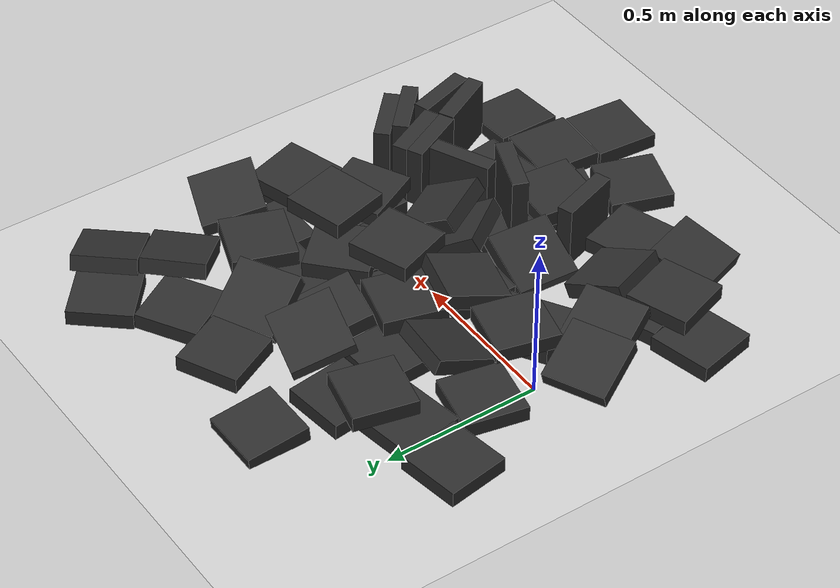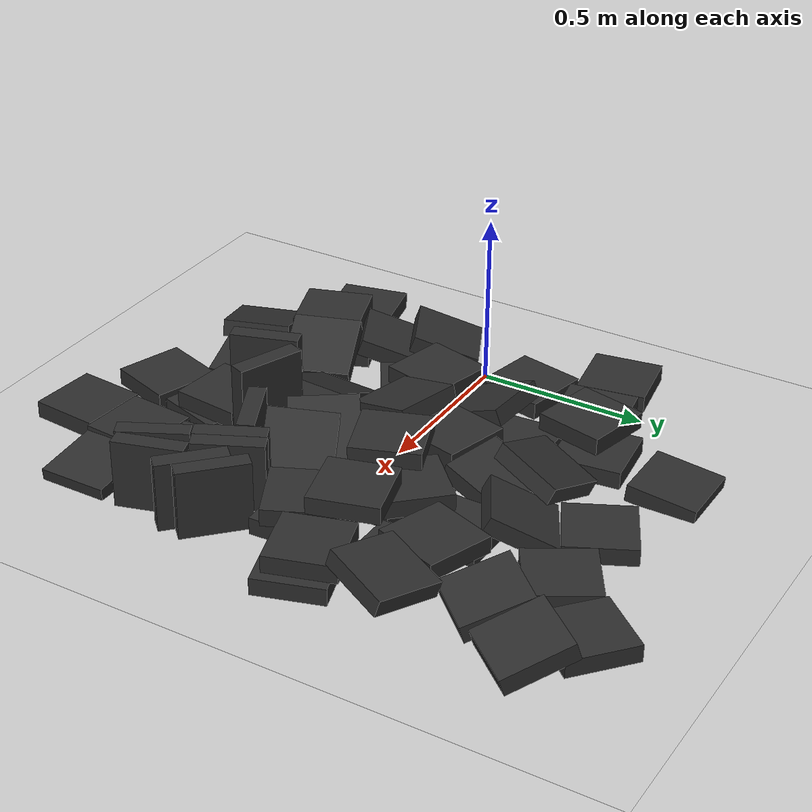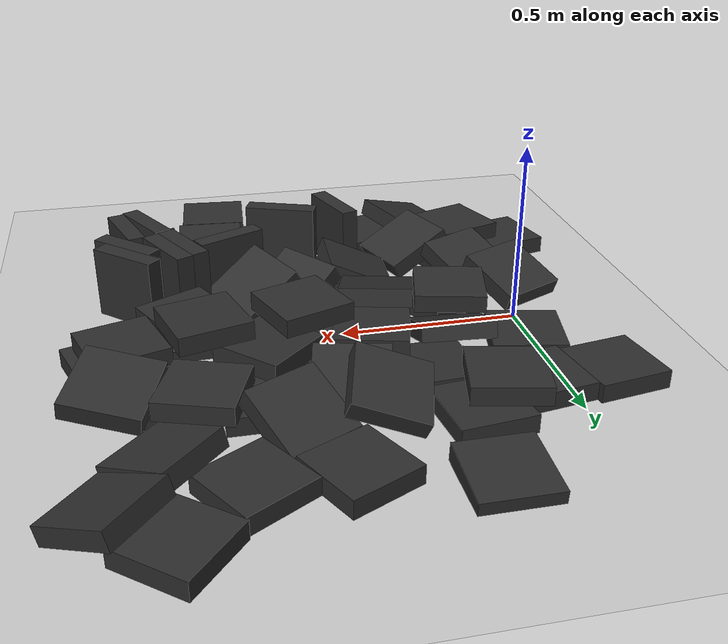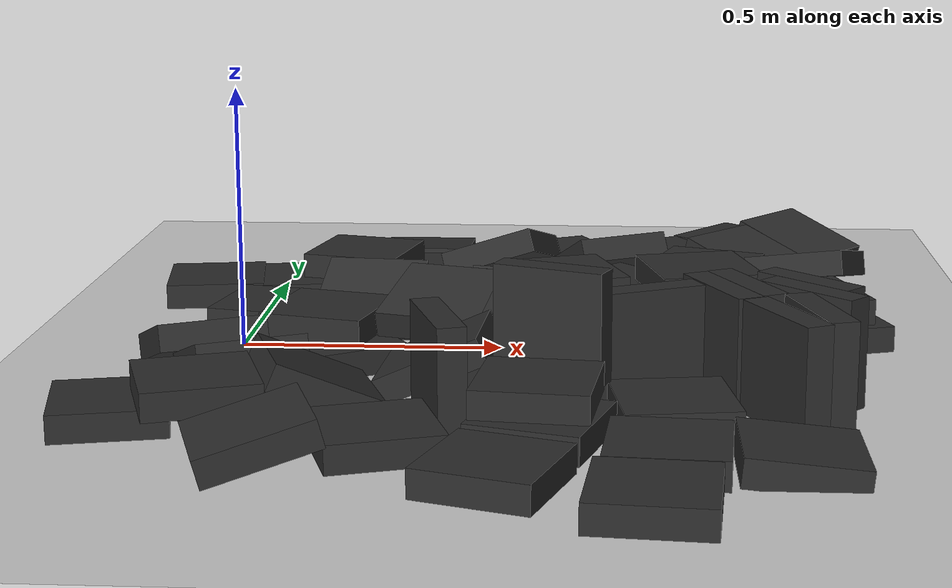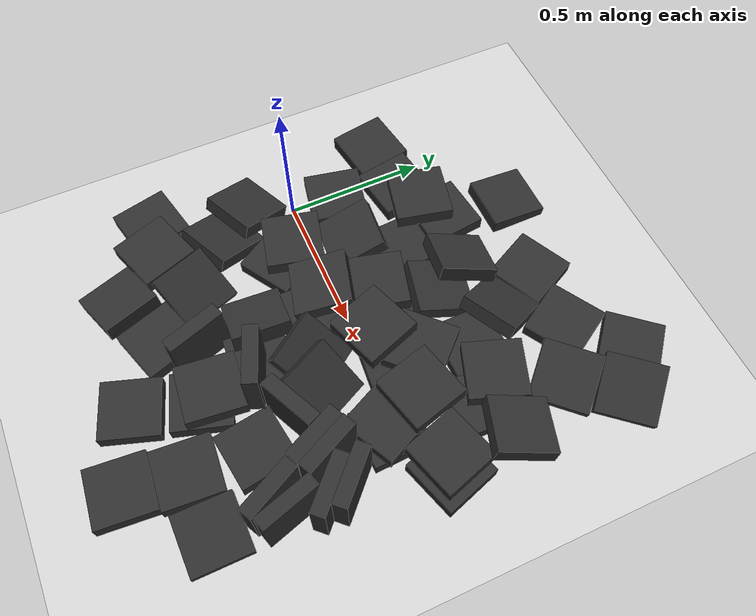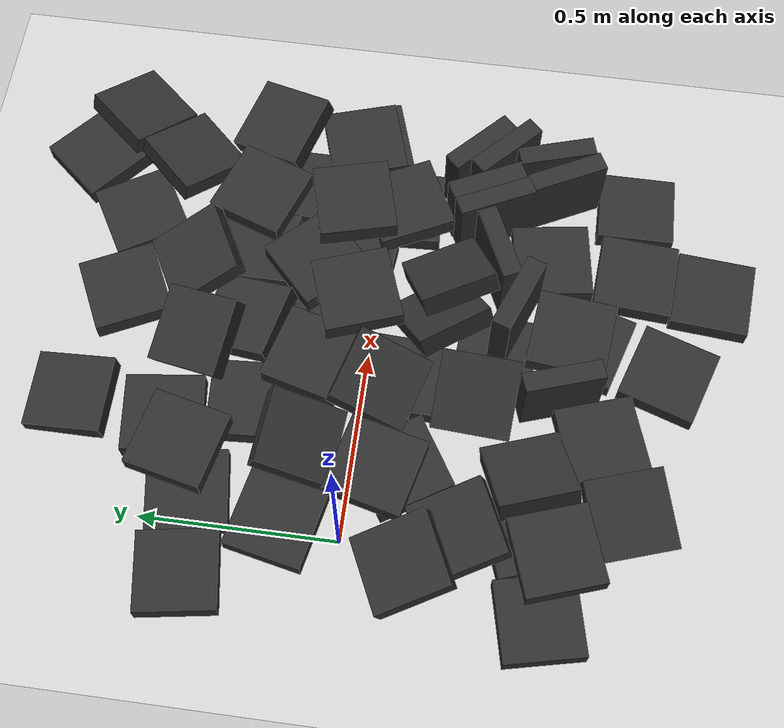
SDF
<sdf version="1.6">
 <world name="default">
  <model name="ground_plane">
   <static>1</static>
   <link name="link">
    <collision name="collision">
     <geometry><plane><normal>0 0 1</normal><size>100 100</size></plane></geometry>
     <surface><friction><ode><mu>100</mu><mu2>50</mu2></ode></friction></surface>
    </collision>
    <visual name="visual">
     <cast_shadows>0</cast_shadows>
     <geometry><plane><normal>0 0 1</normal><size>100 100</size></plane></geometry>
     <material>
      <script><uri>file://media/materials/scripts/gazebo.material</uri><name>Gazebo/Grey</name></script>
     </material>
    </visual>
   </link>
  </model>
  <model name="gareki3">
   <static>1</static>
   <link name="BOX">
    <inertial>
     <mass>10</mass>
     <inertia><ixx>0.001</ixx><ixy>0</ixy><ixz>0</ixz><iyy>0.001</iyy><iyz>0</iyz><izz>0.001</izz></inertia>
    </inertial>
    <collision name="BOX_collision"><geometry><box><size>0.2 0.2 0.05</size></box></geometry></collision>
    <visual name="BOX_visual">
     <geometry><box><size>0.2 0.2 0.05</size></box></geometry>
     <material>
      <ambient>0.175 0.175 0.175 1.0</ambient>
      <diffuse>0.175 0.175 0.175 1.0</diffuse>
      <specular>0.175 0.175 0.175 1.0 1.5</specular>
     </material>
    </visual>
   </link>
   <pose>0.727338 0.072697 0.024895 -0.006319 0.000637 -0.089018</pose>
  </model>
  <model name="gareki0">
   <static>1</static>
   <link name="BOX">
    <inertial>
     <mass>10</mass>
     <inertia><ixx>0.001</ixx><ixy>0</ixy><ixz>0</ixz><iyy>0.001</iyy><iyz>0</iyz><izz>0.001</izz></inertia>
    </inertial>
    <collision name="BOX_collision"><geometry><box><size>0.2 0.2 0.05</size></box></geometry></collision>
    <visual name="BOX_visual">
     <geometry><box><size>0.2 0.2 0.05</size></box></geometry>
     <material>
      <ambient>0.175 0.175 0.175 1.0</ambient>
      <diffuse>0.175 0.175 0.175 1.0</diffuse>
      <specular>0.175 0.175 0.175 1.0 1.5</specular>
     </material>
    </visual>
   </link>
   <pose>0.526934 0.133943 0.024731 0.000444 0.008115 -0.155967</pose>
  </model>
  <model name="gareki1">
   <static>1</static>
   <link name="BOX">
    <inertial>
     <mass>10</mass>
     <inertia><ixx>0.001</ixx><ixy>0</ixy><ixz>0</ixz><iyy>0.001</iyy><iyz>0</iyz><izz>0.001</izz></inertia>
    </inertial>
    <collision name="BOX_collision"><geometry><box><size>0.2 0.2 0.05</size></box></geometry></collision>
    <visual name="BOX_visual">
     <geometry><box><size>0.2 0.2 0.05</size></box></geometry>
     <material>
      <ambient>0.175 0.175 0.175 1.0</ambient>
      <diffuse>0.175 0.175 0.175 1.0</diffuse>
      <specular>0.175 0.175 0.175 1.0 1.5</specular>
     </material>
    </visual>
   </link>
   <pose>0.07655 -0.448971 0.024951 0.001245 -0.000716 0.34208</pose>
  </model>
  <model name="gareki4">
   <static>1</static>
   <link name="BOX">
    <inertial>
     <mass>10</mass>
     <inertia><ixx>0.001</ixx><ixy>0</ixy><ixz>0</ixz><iyy>0.001</iyy><iyz>0</iyz><izz>0.001</izz></inertia>
    </inertial>
    <collision name="BOX_collision"><geometry><box><size>0.2 0.2 0.05</size></box></geometry></collision>
    <visual name="BOX_visual">
     <geometry><box><size>0.2 0.2 0.05</size></box></geometry>
     <material>
      <ambient>0.175 0.175 0.175 1.0</ambient>
      <diffuse>0.175 0.175 0.175 1.0</diffuse>
      <specular>0.175 0.175 0.175 1.0 1.5</specular>
     </material>
    </visual>
   </link>
   <pose>0.324883 0.277416 0.024996 -0.003515 0.002962 -3.07923</pose>
  </model>
  <model name="gareki12">
   <static>1</static>
   <link name="BOX">
    <inertial>
     <mass>10</mass>
     <inertia><ixx>0.001</ixx><ixy>0</ixy><ixz>0</ixz><iyy>0.001</iyy><iyz>0</iyz><izz>0.001</izz></inertia>
    </inertial>
    <collision name="BOX_collision"><geometry><box><size>0.2 0.2 0.05</size></box></geometry></collision>
    <visual name="BOX_visual">
     <geometry><box><size>0.2 0.2 0.05</size></box></geometry>
     <material>
      <ambient>0.175 0.175 0.175 1.0</ambient>
      <diffuse>0.175 0.175 0.175 1.0</diffuse>
      <specular>0.175 0.175 0.175 1.0 1.5</specular>
     </material>
    </visual>
   </link>
   <pose>0.028326 0.158663 0.025 -3.9e-05 -1.6e-05 -0.205768</pose>
  </model>
  <model name="gareki2">
   <static>1</static>
   <link name="BOX">
    <inertial>
     <mass>10</mass>
     <inertia><ixx>0.001</ixx><ixy>0</ixy><ixz>0</ixz><iyy>0.001</iyy><iyz>0</iyz><izz>0.001</izz></inertia>
    </inertial>
    <collision name="BOX_collision"><geometry><box><size>0.2 0.2 0.05</size></box></geometry></collision>
    <visual name="BOX_visual">
     <geometry><box><size>0.2 0.2 0.05</size></box></geometry>
     <material>
      <ambient>0.175 0.175 0.175 1.0</ambient>
      <diffuse>0.175 0.175 0.175 1.0</diffuse>
      <specular>0.175 0.175 0.175 1.0 1.5</specular>
     </material>
    </visual>
   </link>
   <pose>0.543755 0.324039 0.051578 -0.27355 -0.005032 -0.220128</pose>
  </model>
  <model name="gareki15">
   <static>1</static>
   <link name="BOX">
    <inertial>
     <mass>10</mass>
     <inertia><ixx>0.001</ixx><ixy>0</ixy><ixz>0</ixz><iyy>0.001</iyy><iyz>0</iyz><izz>0.001</izz></inertia>
    </inertial>
    <collision name="BOX_collision"><geometry><box><size>0.2 0.2 0.05</size></box></geometry></collision>
    <visual name="BOX_visual">
     <geometry><box><size>0.2 0.2 0.05</size></box></geometry>
     <material>
      <ambient>0.175 0.175 0.175 1.0</ambient>
      <diffuse>0.175 0.175 0.175 1.0</diffuse>
      <specular>0.175 0.175 0.175 1.0 1.5</specular>
     </material>
    </visual>
   </link>
   <pose>0.288718 0.729996 0.016046 -0.092922 0 0</pose>
  </model>
  <model name="gareki6">
   <static>1</static>
   <link name="BOX">
    <inertial>
     <mass>10</mass>
     <inertia><ixx>0.001</ixx><ixy>0</ixy><ixz>0</ixz><iyy>0.001</iyy><iyz>0</iyz><izz>0.001</izz></inertia>
    </inertial>
    <collision name="BOX_collision"><geometry><box><size>0.2 0.2 0.05</size></box></geometry></collision>
    <visual name="BOX_visual">
     <geometry><box><size>0.2 0.2 0.05</size></box></geometry>
     <material>
      <ambient>0.175 0.175 0.175 1.0</ambient>
      <diffuse>0.175 0.175 0.175 1.0</diffuse>
      <specular>0.175 0.175 0.175 1.0 1.5</specular>
     </material>
    </visual>
   </link>
   <pose>0.93069 -0.037854 0.024959 0.000599 -0.000422 0.044697</pose>
  </model>
  <model name="gareki17">
   <static>1</static>
   <link name="BOX">
    <inertial>
     <mass>10</mass>
     <inertia><ixx>0.001</ixx><ixy>0</ixy><ixz>0</ixz><iyy>0.001</iyy><iyz>0</iyz><izz>0.001</izz></inertia>
    </inertial>
    <collision name="BOX_collision"><geometry><box><size>0.2 0.2 0.05</size></box></geometry></collision>
    <visual name="BOX_visual">
     <geometry><box><size>0.2 0.2 0.05</size></box></geometry>
     <material>
      <ambient>0.175 0.175 0.175 1.0</ambient>
      <diffuse>0.175 0.175 0.175 1.0</diffuse>
      <specular>0.175 0.175 0.175 1.0 1.5</specular>
     </material>
    </visual>
   </link>
   <pose>1.06244 -0.222001 0.100002 1.57085 -1e-06 -0.761516</pose>
  </model>
  <model name="gareki18">
   <static>1</static>
   <link name="BOX">
    <inertial>
     <mass>10</mass>
     <inertia><ixx>0.001</ixx><ixy>0</ixy><ixz>0</ixz><iyy>0.001</iyy><iyz>0</iyz><izz>0.001</izz></inertia>
    </inertial>
    <collision name="BOX_collision"><geometry><box><size>0.2 0.2 0.05</size></box></geometry></collision>
    <visual name="BOX_visual">
     <geometry><box><size>0.2 0.2 0.05</size></box></geometry>
     <material>
      <ambient>0.175 0.175 0.175 1.0</ambient>
      <diffuse>0.175 0.175 0.175 1.0</diffuse>
      <specular>0.175 0.175 0.175 1.0 1.5</specular>
     </material>
    </visual>
   </link>
   <pose>1.01081 -0.655456 0.016063 -1.1e-05 0.092734 0.001786</pose>
  </model>
  <model name="gareki14">
   <static>1</static>
   <link name="BOX">
    <inertial>
     <mass>10</mass>
     <inertia><ixx>0.001</ixx><ixy>0</ixy><ixz>0</ixz><iyy>0.001</iyy><iyz>0</iyz><izz>0.001</izz></inertia>
    </inertial>
    <collision name="BOX_collision"><geometry><box><size>0.2 0.2 0.05</size></box></geometry></collision>
    <visual name="BOX_visual">
     <geometry><box><size>0.2 0.2 0.05</size></box></geometry>
     <material>
      <ambient>0.175 0.175 0.175 1.0</ambient>
      <diffuse>0.175 0.175 0.175 1.0</diffuse>
      <specular>0.175 0.175 0.175 1.0 1.5</specular>
     </material>
    </visual>
   </link>
   <pose>0.533327 -0.32418 0.024981 1.6e-05 2.9e-05 -1.63397</pose>
  </model>
  <model name="gareki28">
   <static>1</static>
   <link name="BOX">
    <inertial>
     <mass>10</mass>
     <inertia><ixx>0.001</ixx><ixy>0</ixy><ixz>0</ixz><iyy>0.001</iyy><iyz>0</iyz><izz>0.001</izz></inertia>
    </inertial>
    <collision name="BOX_collision"><geometry><box><size>0.2 0.2 0.05</size></box></geometry></collision>
    <visual name="BOX_visual">
     <geometry><box><size>0.2 0.2 0.05</size></box></geometry>
     <material>
      <ambient>0.175 0.175 0.175 1.0</ambient>
      <diffuse>0.175 0.175 0.175 1.0</diffuse>
      <specular>0.175 0.175 0.175 1.0 1.5</specular>
     </material>
    </visual>
   </link>
   <pose>1.06061 -0.289358 0.099992 1.57087 2.1e-05 -0.761632</pose>
  </model>
  <model name="gareki27">
   <static>1</static>
   <link name="BOX">
    <inertial>
     <mass>10</mass>
     <inertia><ixx>0.001</ixx><ixy>0</ixy><ixz>0</ixz><iyy>0.001</iyy><iyz>0</iyz><izz>0.001</izz></inertia>
    </inertial>
    <collision name="BOX_collision"><geometry><box><size>0.2 0.2 0.05</size></box></geometry></collision>
    <visual name="BOX_visual">
     <geometry><box><size>0.2 0.2 0.05</size></box></geometry>
     <material>
      <ambient>0.175 0.175 0.175 1.0</ambient>
      <diffuse>0.175 0.175 0.175 1.0</diffuse>
      <specular>0.175 0.175 0.175 1.0 1.5</specular>
     </material>
    </visual>
   </link>
   <pose>0.260534 0.484094 0.024989 -0.000544 -0.000708 0.120012</pose>
  </model>
  <model name="gareki24">
   <static>1</static>
   <link name="BOX">
    <inertial>
     <mass>10</mass>
     <inertia><ixx>0.001</ixx><ixy>0</ixy><ixz>0</ixz><iyy>0.001</iyy><iyz>0</iyz><izz>0.001</izz></inertia>
    </inertial>
    <collision name="BOX_collision"><geometry><box><size>0.2 0.2 0.05</size></box></geometry></collision>
    <visual name="BOX_visual">
     <geometry><box><size>0.2 0.2 0.05</size></box></geometry>
     <material>
      <ambient>0.175 0.175 0.175 1.0</ambient>
      <diffuse>0.175 0.175 0.175 1.0</diffuse>
      <specular>0.175 0.175 0.175 1.0 1.5</specular>
     </material>
    </visual>
   </link>
   <pose>0.763953 0.335618 0.024998 -0.000655 3.7e-05 -0.0041</pose>
  </model>
  <model name="gareki26">
   <static>1</static>
   <link name="BOX">
    <inertial>
     <mass>10</mass>
     <inertia><ixx>0.001</ixx><ixy>0</ixy><ixz>0</ixz><iyy>0.001</iyy><iyz>0</iyz><izz>0.001</izz></inertia>
    </inertial>
    <collision name="BOX_collision"><geometry><box><size>0.2 0.2 0.05</size></box></geometry></collision>
    <visual name="BOX_visual">
     <geometry><box><size>0.2 0.2 0.05</size></box></geometry>
     <material>
      <ambient>0.175 0.175 0.175 1.0</ambient>
      <diffuse>0.175 0.175 0.175 1.0</diffuse>
      <specular>0.175 0.175 0.175 1.0 1.5</specular>
     </material>
    </visual>
   </link>
   <pose>0.949059 -0.250492 0.099986 1.57089 -0.000319 -1.11763</pose>
  </model>
  <model name="gareki22">
   <static>1</static>
   <link name="BOX">
    <inertial>
     <mass>10</mass>
     <inertia><ixx>0.001</ixx><ixy>0</ixy><ixz>0</ixz><iyy>0.001</iyy><iyz>0</iyz><izz>0.001</izz></inertia>
    </inertial>
    <collision name="BOX_collision"><geometry><box><size>0.2 0.2 0.05</size></box></geometry></collision>
    <visual name="BOX_visual">
     <geometry><box><size>0.2 0.2 0.05</size></box></geometry>
     <material>
      <ambient>0.175 0.175 0.175 1.0</ambient>
      <diffuse>0.175 0.175 0.175 1.0</diffuse>
      <specular>0.175 0.175 0.175 1.0 1.5</specular>
     </material>
    </visual>
   </link>
   <pose>1.01077 0.551392 0.051467 -0.277361 0.000777 -2.331</pose>
  </model>
  <model name="gareki36">
   <static>1</static>
   <link name="BOX">
    <inertial>
     <mass>10</mass>
     <inertia><ixx>0.001</ixx><ixy>0</ixy><ixz>0</ixz><iyy>0.001</iyy><iyz>0</iyz><izz>0.001</izz></inertia>
    </inertial>
    <collision name="BOX_collision"><geometry><box><size>0.2 0.2 0.05</size></box></geometry></collision>
    <visual name="BOX_visual">
     <geometry><box><size>0.2 0.2 0.05</size></box></geometry>
     <material>
      <ambient>0.175 0.175 0.175 1.0</ambient>
      <diffuse>0.175 0.175 0.175 1.0</diffuse>
      <specular>0.175 0.175 0.175 1.0 1.5</specular>
     </material>
    </visual>
   </link>
   <pose>0.776019 -0.866008 0.024998 2e-05 -1.8e-05 -0.083468</pose>
  </model>
  <model name="gareki35">
   <static>1</static>
   <link name="BOX">
    <inertial>
     <mass>10</mass>
     <inertia><ixx>0.001</ixx><ixy>0</ixy><ixz>0</ixz><iyy>0.001</iyy><iyz>0</iyz><izz>0.001</izz></inertia>
    </inertial>
    <collision name="BOX_collision"><geometry><box><size>0.2 0.2 0.05</size></box></geometry></collision>
    <visual name="BOX_visual">
     <geometry><box><size>0.2 0.2 0.05</size></box></geometry>
     <material>
      <ambient>0.175 0.175 0.175 1.0</ambient>
      <diffuse>0.175 0.175 0.175 1.0</diffuse>
      <specular>0.175 0.175 0.175 1.0 1.5</specular>
     </material>
    </visual>
   </link>
   <pose>0.826051 0.659003 0.024996 0.00046 0.000318 0.536156</pose>
  </model>
  <model name="gareki25">
   <static>1</static>
   <link name="BOX">
    <inertial>
     <mass>10</mass>
     <inertia><ixx>0.001</ixx><ixy>0</ixy><ixz>0</ixz><iyy>0.001</iyy><iyz>0</iyz><izz>0.001</izz></inertia>
    </inertial>
    <collision name="BOX_collision"><geometry><box><size>0.2 0.2 0.05</size></box></geometry></collision>
    <visual name="BOX_visual">
     <geometry><box><size>0.2 0.2 0.05</size></box></geometry>
     <material>
      <ambient>0.175 0.175 0.175 1.0</ambient>
      <diffuse>0.175 0.175 0.175 1.0</diffuse>
      <specular>0.175 0.175 0.175 1.0 1.5</specular>
     </material>
    </visual>
   </link>
   <pose>0.99652 0.812877 0.024986 -7.8e-05 0.000308 2.43506</pose>
  </model>
  <model name="gareki38">
   <static>1</static>
   <link name="BOX">
    <inertial>
     <mass>10</mass>
     <inertia><ixx>0.001</ixx><ixy>0</ixy><ixz>0</ixz><iyy>0.001</iyy><iyz>0</iyz><izz>0.001</izz></inertia>
    </inertial>
    <collision name="BOX_collision"><geometry><box><size>0.2 0.2 0.05</size></box></geometry></collision>
    <visual name="BOX_visual">
     <geometry><box><size>0.2 0.2 0.05</size></box></geometry>
     <material>
      <ambient>0.175 0.175 0.175 1.0</ambient>
      <diffuse>0.175 0.175 0.175 1.0</diffuse>
      <specular>0.175 0.175 0.175 1.0 1.5</specular>
     </material>
    </visual>
   </link>
   <pose>0.332723 -0.608174 0.024992 0.001324 0.000771 0.320978</pose>
  </model>
  <model name="gareki42">
   <static>1</static>
   <link name="BOX">
    <inertial>
     <mass>10</mass>
     <inertia><ixx>0.001</ixx><ixy>0</ixy><ixz>0</ixz><iyy>0.001</iyy><iyz>0</iyz><izz>0.001</izz></inertia>
    </inertial>
    <collision name="BOX_collision"><geometry><box><size>0.2 0.2 0.05</size></box></geometry></collision>
    <visual name="BOX_visual">
     <geometry><box><size>0.2 0.2 0.05</size></box></geometry>
     <material>
      <ambient>0.175 0.175 0.175 1.0</ambient>
      <diffuse>0.175 0.175 0.175 1.0</diffuse>
      <specular>0.175 0.175 0.175 1.0 1.5</specular>
     </material>
    </visual>
   </link>
   <pose>0.917537 -0.043055 0.074792 0.010577 0.011705 2.02669</pose>
  </model>
  <model name="gareki30">
   <static>1</static>
   <link name="BOX">
    <inertial>
     <mass>10</mass>
     <inertia><ixx>0.001</ixx><ixy>0</ixy><ixz>0</ixz><iyy>0.001</iyy><iyz>0</iyz><izz>0.001</izz></inertia>
    </inertial>
    <collision name="BOX_collision"><geometry><box><size>0.2 0.2 0.05</size></box></geometry></collision>
    <visual name="BOX_visual">
     <geometry><box><size>0.2 0.2 0.05</size></box></geometry>
     <material>
      <ambient>0.175 0.175 0.175 1.0</ambient>
      <diffuse>0.175 0.175 0.175 1.0</diffuse>
      <specular>0.175 0.175 0.175 1.0 1.5</specular>
     </material>
    </visual>
   </link>
   <pose>1.06034 -0.421717 0.099999 1.57073 0.000328 -1.27472</pose>
  </model>
  <model name="gareki53">
   <static>1</static>
   <link name="BOX">
    <inertial>
     <mass>10</mass>
     <inertia><ixx>0.001</ixx><ixy>0</ixy><ixz>0</ixz><iyy>0.001</iyy><iyz>0</iyz><izz>0.001</izz></inertia>
    </inertial>
    <collision name="BOX_collision"><geometry><box><size>0.2 0.2 0.05</size></box></geometry></collision>
    <visual name="BOX_visual">
     <geometry><box><size>0.2 0.2 0.05</size></box></geometry>
     <material>
      <ambient>0.175 0.175 0.175 1.0</ambient>
      <diffuse>0.175 0.175 0.175 1.0</diffuse>
      <specular>0.175 0.175 0.175 1.0 1.5</specular>
     </material>
    </visual>
   </link>
   <pose>1.00125 -0.454012 0.100005 1.57107 1.6e-05 -1.09655</pose>
  </model>
  <model name="gareki51">
   <static>1</static>
   <link name="BOX">
    <inertial>
     <mass>10</mass>
     <inertia><ixx>0.001</ixx><ixy>0</ixy><ixz>0</ixz><iyy>0.001</iyy><iyz>0</iyz><izz>0.001</izz></inertia>
    </inertial>
    <collision name="BOX_collision"><geometry><box><size>0.2 0.2 0.05</size></box></geometry></collision>
    <visual name="BOX_visual">
     <geometry><box><size>0.2 0.2 0.05</size></box></geometry>
     <material>
      <ambient>0.175 0.175 0.175 1.0</ambient>
      <diffuse>0.175 0.175 0.175 1.0</diffuse>
      <specular>0.175 0.175 0.175 1.0 1.5</specular>
     </material>
    </visual>
   </link>
   <pose>1.12687 0.07988 0.025021 -0.000604 0.000461 0.30977</pose>
  </model>
  <model name="gareki57">
   <static>1</static>
   <link name="BOX">
    <inertial>
     <mass>10</mass>
     <inertia><ixx>0.001</ixx><ixy>0</ixy><ixz>0</ixz><iyy>0.001</iyy><iyz>0</iyz><izz>0.001</izz></inertia>
    </inertial>
    <collision name="BOX_collision"><geometry><box><size>0.2 0.2 0.05</size></box></geometry></collision>
    <visual name="BOX_visual">
     <geometry><box><size>0.2 0.2 0.05</size></box></geometry>
     <material>
      <ambient>0.175 0.175 0.175 1.0</ambient>
      <diffuse>0.175 0.175 0.175 1.0</diffuse>
      <specular>0.175 0.175 0.175 1.0 1.5</specular>
     </material>
    </visual>
   </link>
   <pose>0.449591 0.13358 0.074778 -0.003096 -0.010074 1.31124</pose>
  </model>
  <model name="gareki50">
   <static>1</static>
   <link name="BOX">
    <inertial>
     <mass>10</mass>
     <inertia><ixx>0.001</ixx><ixy>0</ixy><ixz>0</ixz><iyy>0.001</iyy><iyz>0</iyz><izz>0.001</izz></inertia>
    </inertial>
    <collision name="BOX_collision"><geometry><box><size>0.2 0.2 0.05</size></box></geometry></collision>
    <visual name="BOX_visual">
     <geometry><box><size>0.2 0.2 0.05</size></box></geometry>
     <material>
      <ambient>0.175 0.175 0.175 1.0</ambient>
      <diffuse>0.175 0.175 0.175 1.0</diffuse>
      <specular>0.175 0.175 0.175 1.0 1.5</specular>
     </material>
    </visual>
   </link>
   <pose>0.597262 -0.549124 0.024978 -0.000266 0.000211 -1.8675</pose>
  </model>
  <model name="gareki61">
   <static>1</static>
   <link name="BOX">
    <inertial>
     <mass>10</mass>
     <inertia><ixx>0.001</ixx><ixy>0</ixy><ixz>0</ixz><iyy>0.001</iyy><iyz>0</iyz><izz>0.001</izz></inertia>
    </inertial>
    <collision name="BOX_collision"><geometry><box><size>0.2 0.2 0.05</size></box></geometry></collision>
    <visual name="BOX_visual">
     <geometry><box><size>0.2 0.2 0.05</size></box></geometry>
     <material>
      <ambient>0.175 0.175 0.175 1.0</ambient>
      <diffuse>0.175 0.175 0.175 1.0</diffuse>
      <specular>0.175 0.175 0.175 1.0 1.5</specular>
     </material>
    </visual>
   </link>
   <pose>0.443801 -0.086421 0.024971 -0.000643 -0.000471 -0.043581</pose>
  </model>
  <model name="gareki58">
   <static>1</static>
   <link name="BOX">
    <inertial>
     <mass>10</mass>
     <inertia><ixx>0.001</ixx><ixy>0</ixy><ixz>0</ixz><iyy>0.001</iyy><iyz>0</iyz><izz>0.001</izz></inertia>
    </inertial>
    <collision name="BOX_collision"><geometry><box><size>0.2 0.2 0.05</size></box></geometry></collision>
    <visual name="BOX_visual">
     <geometry><box><size>0.2 0.2 0.05</size></box></geometry>
     <material>
      <ambient>0.175 0.175 0.175 1.0</ambient>
      <diffuse>0.175 0.175 0.175 1.0</diffuse>
      <specular>0.175 0.175 0.175 1.0 1.5</specular>
     </material>
    </visual>
   </link>
   <pose>0.803371 -0.665391 0.025004 -5.6e-05 1.9e-05 -0.075238</pose>
  </model>
  <model name="gareki54">
   <static>1</static>
   <link name="BOX">
    <inertial>
     <mass>10</mass>
     <inertia><ixx>0.001</ixx><ixy>0</ixy><ixz>0</ixz><iyy>0.001</iyy><iyz>0</iyz><izz>0.001</izz></inertia>
    </inertial>
    <collision name="BOX_collision"><geometry><box><size>0.2 0.2 0.05</size></box></geometry></collision>
    <visual name="BOX_visual">
     <geometry><box><size>0.2 0.2 0.05</size></box></geometry>
     <material>
      <ambient>0.175 0.175 0.175 1.0</ambient>
      <diffuse>0.175 0.175 0.175 1.0</diffuse>
      <specular>0.175 0.175 0.175 1.0 1.5</specular>
     </material>
    </visual>
   </link>
   <pose>0.725973 0.164768 0.074913 0.003448 -0.006519 0.761527</pose>
  </model>
  <model name="gareki63">
   <static>1</static>
   <link name="BOX">
    <inertial>
     <mass>10</mass>
     <inertia><ixx>0.001</ixx><ixy>0</ixy><ixz>0</ixz><iyy>0.001</iyy><iyz>0</iyz><izz>0.001</izz></inertia>
    </inertial>
    <collision name="BOX_collision"><geometry><box><size>0.2 0.2 0.05</size></box></geometry></collision>
    <visual name="BOX_visual">
     <geometry><box><size>0.2 0.2 0.05</size></box></geometry>
     <material>
      <ambient>0.175 0.175 0.175 1.0</ambient>
      <diffuse>0.175 0.175 0.175 1.0</diffuse>
      <specular>0.175 0.175 0.175 1.0 1.5</specular>
     </material>
    </visual>
   </link>
   <pose>0.404955 -0.285958 0.063644 0.421229 -0.000593 -1.63057</pose>
  </model>
  <model name="gareki60">
   <static>1</static>
   <link name="BOX">
    <inertial>
     <mass>10</mass>
     <inertia><ixx>0.001</ixx><ixy>0</ixy><ixz>0</ixz><iyy>0.001</iyy><iyz>0</iyz><izz>0.001</izz></inertia>
    </inertial>
    <collision name="BOX_collision"><geometry><box><size>0.2 0.2 0.05</size></box></geometry></collision>
    <visual name="BOX_visual">
     <geometry><box><size>0.2 0.2 0.05</size></box></geometry>
     <material>
      <ambient>0.175 0.175 0.175 1.0</ambient>
      <diffuse>0.175 0.175 0.175 1.0</diffuse>
      <specular>0.175 0.175 0.175 1.0 1.5</specular>
     </material>
    </visual>
   </link>
   <pose>0.147111 -0.686221 0.049335 -0.00161 -0.255822 0.32323</pose>
  </model>
  <model name="gareki69">
   <static>1</static>
   <link name="BOX">
    <inertial>
     <mass>10</mass>
     <inertia><ixx>0.001</ixx><ixy>0</ixy><ixz>0</ixz><iyy>0.001</iyy><iyz>0</iyz><izz>0.001</izz></inertia>
    </inertial>
    <collision name="BOX_collision"><geometry><box><size>0.2 0.2 0.05</size></box></geometry></collision>
    <visual name="BOX_visual">
     <geometry><box><size>0.2 0.2 0.05</size></box></geometry>
     <material>
      <ambient>0.175 0.175 0.175 1.0</ambient>
      <diffuse>0.175 0.175 0.175 1.0</diffuse>
      <specular>0.175 0.175 0.175 1.0 1.5</specular>
     </material>
    </visual>
   </link>
   <pose>0.609463 -0.172499 0.073443 8.9e-05 -0.548423 -2.5206</pose>
  </model>
  <model name="gareki44">
   <static>1</static>
   <link name="BOX">
    <inertial>
     <mass>10</mass>
     <inertia><ixx>0.001</ixx><ixy>0</ixy><ixz>0</ixz><iyy>0.001</iyy><iyz>0</iyz><izz>0.001</izz></inertia>
    </inertial>
    <collision name="BOX_collision"><geometry><box><size>0.2 0.2 0.05</size></box></geometry></collision>
    <visual name="BOX_visual">
     <geometry><box><size>0.2 0.2 0.05</size></box></geometry>
     <material>
      <ambient>0.175 0.175 0.175 1.0</ambient>
      <diffuse>0.175 0.175 0.175 1.0</diffuse>
      <specular>0.175 0.175 0.175 1.0 1.5</specular>
     </material>
    </visual>
   </link>
   <pose>-0.129778 -0.493605 0.024963 -0.000791 0.000398 0.224794</pose>
  </model>
  <model name="gareki70">
   <static>1</static>
   <link name="BOX">
    <inertial>
     <mass>10</mass>
     <inertia><ixx>0.001</ixx><ixy>0</ixy><ixz>0</ixz><iyy>0.001</iyy><iyz>0</iyz><izz>0.001</izz></inertia>
    </inertial>
    <collision name="BOX_collision"><geometry><box><size>0.2 0.2 0.05</size></box></geometry></collision>
    <visual name="BOX_visual">
     <geometry><box><size>0.2 0.2 0.05</size></box></geometry>
     <material>
      <ambient>0.175 0.175 0.175 1.0</ambient>
      <diffuse>0.175 0.175 0.175 1.0</diffuse>
      <specular>0.175 0.175 0.175 1.0 1.5</specular>
     </material>
    </visual>
   </link>
   <pose>0.905126 -0.274718 0.099988 -0.214301 -1.57069 0.667307</pose>
  </model>
  <model name="gareki67">
   <static>1</static>
   <link name="BOX">
    <inertial>
     <mass>10</mass>
     <inertia><ixx>0.001</ixx><ixy>0</ixy><ixz>0</ixz><iyy>0.001</iyy><iyz>0</iyz><izz>0.001</izz></inertia>
    </inertial>
    <collision name="BOX_collision"><geometry><box><size>0.2 0.2 0.05</size></box></geometry></collision>
    <visual name="BOX_visual">
     <geometry><box><size>0.2 0.2 0.05</size></box></geometry>
     <material>
      <ambient>0.175 0.175 0.175 1.0</ambient>
      <diffuse>0.175 0.175 0.175 1.0</diffuse>
      <specular>0.175 0.175 0.175 1.0 1.5</specular>
     </material>
    </visual>
   </link>
   <pose>0.533899 -0.763739 0.024997 -4.8e-05 5.5e-05 -0.321224</pose>
  </model>
  <model name="gareki72">
   <static>1</static>
   <link name="BOX">
    <inertial>
     <mass>10</mass>
     <inertia><ixx>0.001</ixx><ixy>0</ixy><ixz>0</ixz><iyy>0.001</iyy><iyz>0</iyz><izz>0.001</izz></inertia>
    </inertial>
    <collision name="BOX_collision"><geometry><box><size>0.2 0.2 0.05</size></box></geometry></collision>
    <visual name="BOX_visual">
     <geometry><box><size>0.2 0.2 0.05</size></box></geometry>
     <material>
      <ambient>0.175 0.175 0.175 1.0</ambient>
      <diffuse>0.175 0.175 0.175 1.0</diffuse>
      <specular>0.175 0.175 0.175 1.0 1.5</specular>
     </material>
    </visual>
   </link>
   <pose>0.719414 -0.183045 0.081116 -0.096196 0.540726 0.435461</pose>
  </model>
  <model name="gareki76">
   <static>1</static>
   <link name="BOX">
    <inertial>
     <mass>10</mass>
     <inertia><ixx>0.001</ixx><ixy>0</ixy><ixz>0</ixz><iyy>0.001</iyy><iyz>0</iyz><izz>0.001</izz></inertia>
    </inertial>
    <collision name="BOX_collision"><geometry><box><size>0.2 0.2 0.05</size></box></geometry></collision>
    <visual name="BOX_visual">
     <geometry><box><size>0.2 0.2 0.05</size></box></geometry>
     <material>
      <ambient>0.175 0.175 0.175 1.0</ambient>
      <diffuse>0.175 0.175 0.175 1.0</diffuse>
      <specular>0.175 0.175 0.175 1.0 1.5</specular>
     </material>
    </visual>
   </link>
   <pose>0.050817 -0.281684 0.056407 -0.334784 0.003684 0.442725</pose>
  </model>
  <model name="gareki59">
   <static>1</static>
   <link name="BOX">
    <inertial>
     <mass>10</mass>
     <inertia><ixx>0.001</ixx><ixy>0</ixy><ixz>0</ixz><iyy>0.001</iyy><iyz>0</iyz><izz>0.001</izz></inertia>
    </inertial>
    <collision name="BOX_collision"><geometry><box><size>0.2 0.2 0.05</size></box></geometry></collision>
    <visual name="BOX_visual">
     <geometry><box><size>0.2 0.2 0.05</size></box></geometry>
     <material>
      <ambient>0.175 0.175 0.175 1.0</ambient>
      <diffuse>0.175 0.175 0.175 1.0</diffuse>
      <specular>0.175 0.175 0.175 1.0 1.5</specular>
     </material>
    </visual>
   </link>
   <pose>0.818763 -0.443982 0.024986 -0.000117 -7.1e-05 -1.42401</pose>
  </model>
  <model name="gareki79">
   <static>1</static>
   <link name="BOX">
    <inertial>
     <mass>10</mass>
     <inertia><ixx>0.001</ixx><ixy>0</ixy><ixz>0</ixz><iyy>0.001</iyy><iyz>0</iyz><izz>0.001</izz></inertia>
    </inertial>
    <collision name="BOX_collision"><geometry><box><size>0.2 0.2 0.05</size></box></geometry></collision>
    <visual name="BOX_visual">
     <geometry><box><size>0.2 0.2 0.05</size></box></geometry>
     <material>
      <ambient>0.175 0.175 0.175 1.0</ambient>
      <diffuse>0.175 0.175 0.175 1.0</diffuse>
      <specular>0.175 0.175 0.175 1.0 1.5</specular>
     </material>
    </visual>
   </link>
   <pose>0.425064 -0.48968 0.100003 -1.57007 -0.000199 -1.24648</pose>
  </model>
  <model name="gareki75">
   <static>1</static>
   <link name="BOX">
    <inertial>
     <mass>10</mass>
     <inertia><ixx>0.001</ixx><ixy>0</ixy><ixz>0</ixz><iyy>0.001</iyy><iyz>0</iyz><izz>0.001</izz></inertia>
    </inertial>
    <collision name="BOX_collision"><geometry><box><size>0.2 0.2 0.05</size></box></geometry></collision>
    <visual name="BOX_visual">
     <geometry><box><size>0.2 0.2 0.05</size></box></geometry>
     <material>
      <ambient>0.175 0.175 0.175 1.0</ambient>
      <diffuse>0.175 0.175 0.175 1.0</diffuse>
      <specular>0.175 0.175 0.175 1.0 1.5</specular>
     </material>
    </visual>
   </link>
   <pose>0.023169 -0.516548 0.074823 0.001042 -0.001175 0.33035</pose>
  </model>
  <model name="gareki80">
   <static>1</static>
   <link name="BOX">
    <inertial>
     <mass>10</mass>
     <inertia><ixx>0.001</ixx><ixy>0</ixy><ixz>0</ixz><iyy>0.001</iyy><iyz>0</iyz><izz>0.001</izz></inertia>
    </inertial>
    <collision name="BOX_collision"><geometry><box><size>0.2 0.2 0.05</size></box></geometry></collision>
    <visual name="BOX_visual">
     <geometry><box><size>0.2 0.2 0.05</size></box></geometry>
     <material>
      <ambient>0.175 0.175 0.175 1.0</ambient>
      <diffuse>0.175 0.175 0.175 1.0</diffuse>
      <specular>0.175 0.175 0.175 1.0 1.5</specular>
     </material>
    </visual>
   </link>
   <pose>0.200525 -0.123119 0.024972 0.000482 -0.000848 0.555696</pose>
  </model>
  <model name="gareki81">
   <static>1</static>
   <link name="BOX">
    <inertial>
     <mass>10</mass>
     <inertia><ixx>0.001</ixx><ixy>0</ixy><ixz>0</ixz><iyy>0.001</iyy><iyz>0</iyz><izz>0.001</izz></inertia>
    </inertial>
    <collision name="BOX_collision"><geometry><box><size>0.2 0.2 0.05</size></box></geometry></collision>
    <visual name="BOX_visual">
     <geometry><box><size>0.2 0.2 0.05</size></box></geometry>
     <material>
      <ambient>0.175 0.175 0.175 1.0</ambient>
      <diffuse>0.175 0.175 0.175 1.0</diffuse>
      <specular>0.175 0.175 0.175 1.0 1.5</specular>
     </material>
    </visual>
   </link>
   <pose>0.963803 0.265174 0.024859 -0.003136 0.001692 -0.005818</pose>
  </model>
  <model name="gareki87">
   <static>1</static>
   <link name="BOX">
    <inertial>
     <mass>10</mass>
     <inertia><ixx>0.001</ixx><ixy>0</ixy><ixz>0</ixz><iyy>0.001</iyy><iyz>0</iyz><izz>0.001</izz></inertia>
    </inertial>
    <collision name="BOX_collision"><geometry><box><size>0.2 0.2 0.05</size></box></geometry></collision>
    <visual name="BOX_visual">
     <geometry><box><size>0.2 0.2 0.05</size></box></geometry>
     <material>
      <ambient>0.175 0.175 0.175 1.0</ambient>
      <diffuse>0.175 0.175 0.175 1.0</diffuse>
      <specular>0.175 0.175 0.175 1.0 1.5</specular>
     </material>
    </visual>
   </link>
   <pose>-0.044257 -0.159592 0.0566 -0.33597 0.000286 0.442317</pose>
  </model>
  <model name="gareki89">
   <static>1</static>
   <link name="BOX">
    <inertial>
     <mass>10</mass>
     <inertia><ixx>0.001</ixx><ixy>0</ixy><ixz>0</ixz><iyy>0.001</iyy><iyz>0</iyz><izz>0.001</izz></inertia>
    </inertial>
    <collision name="BOX_collision"><geometry><box><size>0.2 0.2 0.05</size></box></geometry></collision>
    <visual name="BOX_visual">
     <geometry><box><size>0.2 0.2 0.05</size></box></geometry>
     <material>
      <ambient>0.175 0.175 0.175 1.0</ambient>
      <diffuse>0.175 0.175 0.175 1.0</diffuse>
      <specular>0.175 0.175 0.175 1.0 1.5</specular>
     </material>
    </visual>
   </link>
   <pose>0.696713 0.477138 0.067436 -0.468547 1.8e-05 0.496383</pose>
  </model>
  <model name="gareki68">
   <static>1</static>
   <link name="BOX">
    <inertial>
     <mass>10</mass>
     <inertia><ixx>0.001</ixx><ixy>0</ixy><ixz>0</ixz><iyy>0.001</iyy><iyz>0</iyz><izz>0.001</izz></inertia>
    </inertial>
    <collision name="BOX_collision"><geometry><box><size>0.2 0.2 0.05</size></box></geometry></collision>
    <visual name="BOX_visual">
     <geometry><box><size>0.2 0.2 0.05</size></box></geometry>
     <material>
      <ambient>0.175 0.175 0.175 1.0</ambient>
      <diffuse>0.175 0.175 0.175 1.0</diffuse>
      <specular>0.175 0.175 0.175 1.0 1.5</specular>
     </material>
    </visual>
   </link>
   <pose>0.06997 0.384833 0.025 -8.5e-05 -0.000126 0.161111</pose>
  </model>
  <model name="gareki94">
   <static>1</static>
   <link name="BOX">
    <inertial>
     <mass>10</mass>
     <inertia><ixx>0.001</ixx><ixy>0</ixy><ixz>0</ixz><iyy>0.001</iyy><iyz>0</iyz><izz>0.001</izz></inertia>
    </inertial>
    <collision name="BOX_collision"><geometry><box><size>0.2 0.2 0.05</size></box></geometry></collision>
    <visual name="BOX_visual">
     <geometry><box><size>0.2 0.2 0.05</size></box></geometry>
     <material>
      <ambient>0.175 0.175 0.175 1.0</ambient>
      <diffuse>0.175 0.175 0.175 1.0</diffuse>
      <specular>0.175 0.175 0.175 1.0 1.5</specular>
     </material>
    </visual>
   </link>
   <pose>0.180391 0.424635 0.074751 0.000116 0.002439 -0.224383</pose>
  </model>
  <model name="gareki93">
   <static>1</static>
   <link name="BOX">
    <inertial>
     <mass>10</mass>
     <inertia><ixx>0.001</ixx><ixy>0</ixy><ixz>0</ixz><iyy>0.001</iyy><iyz>0</iyz><izz>0.001</izz></inertia>
    </inertial>
    <collision name="BOX_collision"><geometry><box><size>0.2 0.2 0.05</size></box></geometry></collision>
    <visual name="BOX_visual">
     <geometry><box><size>0.2 0.2 0.05</size></box></geometry>
     <material>
      <ambient>0.175 0.175 0.175 1.0</ambient>
      <diffuse>0.175 0.175 0.175 1.0</diffuse>
      <specular>0.175 0.175 0.175 1.0 1.5</specular>
     </material>
    </visual>
   </link>
   <pose>1.09127 0.091716 0.074915 -0.002403 -0.002725 -1.27004</pose>
  </model>
  <model name="gareki82">
   <static>1</static>
   <link name="BOX">
    <inertial>
     <mass>10</mass>
     <inertia><ixx>0.001</ixx><ixy>0</ixy><ixz>0</ixz><iyy>0.001</iyy><iyz>0</iyz><izz>0.001</izz></inertia>
    </inertial>
    <collision name="BOX_collision"><geometry><box><size>0.2 0.2 0.05</size></box></geometry></collision>
    <visual name="BOX_visual">
     <geometry><box><size>0.2 0.2 0.05</size></box></geometry>
     <material>
      <ambient>0.175 0.175 0.175 1.0</ambient>
      <diffuse>0.175 0.175 0.175 1.0</diffuse>
      <specular>0.175 0.175 0.175 1.0 1.5</specular>
     </material>
    </visual>
   </link>
   <pose>1.13435 0.715874 0.054327 0.001169 0.311416 -0.707188</pose>
  </model>
  <model name="gareki96">
   <static>1</static>
   <link name="BOX">
    <inertial>
     <mass>10</mass>
     <inertia><ixx>0.001</ixx><ixy>0</ixy><ixz>0</ixz><iyy>0.001</iyy><iyz>0</iyz><izz>0.001</izz></inertia>
    </inertial>
    <collision name="BOX_collision"><geometry><box><size>0.2 0.2 0.05</size></box></geometry></collision>
    <visual name="BOX_visual">
     <geometry><box><size>0.2 0.2 0.05</size></box></geometry>
     <material>
      <ambient>0.175 0.175 0.175 1.0</ambient>
      <diffuse>0.175 0.175 0.175 1.0</diffuse>
      <specular>0.175 0.175 0.175 1.0 1.5</specular>
     </material>
    </visual>
   </link>
   <pose>0.905703 0.343814 0.074825 0.000579 -0.001041 -0.342254</pose>
  </model>
  <model name="gareki101">
   <static>1</static>
   <link name="BOX">
    <inertial>
     <mass>10</mass>
     <inertia><ixx>0.001</ixx><ixy>0</ixy><ixz>0</ixz><iyy>0.001</iyy><iyz>0</iyz><izz>0.001</izz></inertia>
    </inertial>
    <collision name="BOX_collision"><geometry><box><size>0.2 0.2 0.05</size></box></geometry></collision>
    <visual name="BOX_visual">
     <geometry><box><size>0.2 0.2 0.05</size></box></geometry>
     <material>
      <ambient>0.175 0.175 0.175 1.0</ambient>
      <diffuse>0.175 0.175 0.175 1.0</diffuse>
      <specular>0.175 0.175 0.175 1.0 1.5</specular>
     </material>
    </visual>
   </link>
   <pose>0.773314 -0.298698 0.099992 1.57084 9e-06 0.434407</pose>
  </model>
  <model name="gareki102">
   <static>1</static>
   <link name="BOX">
    <inertial>
     <mass>10</mass>
     <inertia><ixx>0.001</ixx><ixy>0</ixy><ixz>0</ixz><iyy>0.001</iyy><iyz>0</iyz><izz>0.001</izz></inertia>
    </inertial>
    <collision name="BOX_collision"><geometry><box><size>0.2 0.2 0.05</size></box></geometry></collision>
    <visual name="BOX_visual">
     <geometry><box><size>0.2 0.2 0.05</size></box></geometry>
     <material>
      <ambient>0.175 0.175 0.175 1.0</ambient>
      <diffuse>0.175 0.175 0.175 1.0</diffuse>
      <specular>0.175 0.175 0.175 1.0 1.5</specular>
     </material>
    </visual>
   </link>
   <pose>0.231714 0.135529 0.061556 0.001095 -0.394749 1.49012</pose>
  </model>
  <model name="gareki99">
   <static>1</static>
   <link name="BOX">
    <inertial>
     <mass>10</mass>
     <inertia><ixx>0.001</ixx><ixy>0</ixy><ixz>0</ixz><iyy>0.001</iyy><iyz>0</iyz><izz>0.001</izz></inertia>
    </inertial>
    <collision name="BOX_collision"><geometry><box><size>0.2 0.2 0.05</size></box></geometry></collision>
    <visual name="BOX_visual">
     <geometry><box><size>0.2 0.2 0.05</size></box></geometry>
     <material>
      <ambient>0.175 0.175 0.175 1.0</ambient>
      <diffuse>0.175 0.175 0.175 1.0</diffuse>
      <specular>0.175 0.175 0.175 1.0 1.5</specular>
     </material>
    </visual>
   </link>
   <pose>-0.130483 0.370729 0.024998 -3.5e-05 -2.6e-05 0.159923</pose>
  </model>
  <model name="gareki108">
   <static>1</static>
   <link name="BOX">
    <inertial>
     <mass>10</mass>
     <inertia><ixx>0.001</ixx><ixy>0</ixy><ixz>0</ixz><iyy>0.001</iyy><iyz>0</iyz><izz>0.001</izz></inertia>
    </inertial>
    <collision name="BOX_collision"><geometry><box><size>0.2 0.2 0.05</size></box></geometry></collision>
    <visual name="BOX_visual">
     <geometry><box><size>0.2 0.2 0.05</size></box></geometry>
     <material>
      <ambient>0.175 0.175 0.175 1.0</ambient>
      <diffuse>0.175 0.175 0.175 1.0</diffuse>
      <specular>0.175 0.175 0.175 1.0 1.5</specular>
     </material>
    </visual>
   </link>
   <pose>0.596099 0.655174 0.024644 2e-06 -0.003565 0.458084</pose>
  </model>
  <model name="gareki98">
   <static>1</static>
   <link name="BOX">
    <inertial>
     <mass>10</mass>
     <inertia><ixx>0.001</ixx><ixy>0</ixy><ixz>0</ixz><iyy>0.001</iyy><iyz>0</iyz><izz>0.001</izz></inertia>
    </inertial>
    <collision name="BOX_collision"><geometry><box><size>0.2 0.2 0.05</size></box></geometry></collision>
    <visual name="BOX_visual">
     <geometry><box><size>0.2 0.2 0.05</size></box></geometry>
     <material>
      <ambient>0.175 0.175 0.175 1.0</ambient>
      <diffuse>0.175 0.175 0.175 1.0</diffuse>
      <specular>0.175 0.175 0.175 1.0 1.5</specular>
     </material>
    </visual>
   </link>
   <pose>0.609688 -0.359105 0.149971 1.57103 -0.000102 -0.363372</pose>
  </model>
  <model name="gareki109">
   <static>1</static>
   <link name="BOX">
    <inertial>
     <mass>10</mass>
     <inertia><ixx>0.001</ixx><ixy>0</ixy><ixz>0</ixz><iyy>0.001</iyy><iyz>0</iyz><izz>0.001</izz></inertia>
    </inertial>
    <collision name="BOX_collision"><geometry><box><size>0.2 0.2 0.05</size></box></geometry></collision>
    <visual name="BOX_visual">
     <geometry><box><size>0.2 0.2 0.05</size></box></geometry>
     <material>
      <ambient>0.175 0.175 0.175 1.0</ambient>
      <diffuse>0.175 0.175 0.175 1.0</diffuse>
      <specular>0.175 0.175 0.175 1.0 1.5</specular>
     </material>
    </visual>
   </link>
   <pose>0.210486 -0.437416 0.06369 -0.422153 -0.002547 -1.22927</pose>
  </model>
  <model name="gareki110">
   <static>1</static>
   <link name="BOX">
    <inertial>
     <mass>10</mass>
     <inertia><ixx>0.001</ixx><ixy>0</ixy><ixz>0</ixz><iyy>0.001</iyy><iyz>0</iyz><izz>0.001</izz></inertia>
    </inertial>
    <collision name="BOX_collision"><geometry><box><size>0.2 0.2 0.05</size></box></geometry></collision>
    <visual name="BOX_visual">
     <geometry><box><size>0.2 0.2 0.05</size></box></geometry>
     <material>
      <ambient>0.175 0.175 0.175 1.0</ambient>
      <diffuse>0.175 0.175 0.175 1.0</diffuse>
      <specular>0.175 0.175 0.175 1.0 1.5</specular>
     </material>
    </visual>
   </link>
   <pose>1.11174 0.319134 0.094396 -0.166888 0.21577 1.20171</pose>
  </model>
  <model name="gareki118">
   <static>1</static>
   <link name="BOX">
    <inertial>
     <mass>10</mass>
     <inertia><ixx>0.001</ixx><ixy>0</ixy><ixz>0</ixz><iyy>0.001</iyy><iyz>0</iyz><izz>0.001</izz></inertia>
    </inertial>
    <collision name="BOX_collision"><geometry><box><size>0.2 0.2 0.05</size></box></geometry></collision>
    <visual name="BOX_visual">
     <geometry><box><size>0.2 0.2 0.05</size></box></geometry>
     <material>
      <ambient>0.175 0.175 0.175 1.0</ambient>
      <diffuse>0.175 0.175 0.175 1.0</diffuse>
      <specular>0.175 0.175 0.175 1.0 1.5</specular>
     </material>
    </visual>
   </link>
   <pose>0.618288 0.045149 0.123715 0.004129 0.002324 0.3492</pose>
  </model>
  <model name="gareki117">
   <static>1</static>
   <link name="BOX">
    <inertial>
     <mass>10</mass>
     <inertia><ixx>0.001</ixx><ixy>0</ixy><ixz>0</ixz><iyy>0.001</iyy><iyz>0</iyz><izz>0.001</izz></inertia>
    </inertial>
    <collision name="BOX_collision"><geometry><box><size>0.2 0.2 0.05</size></box></geometry></collision>
    <visual name="BOX_visual">
     <geometry><box><size>0.2 0.2 0.05</size></box></geometry>
     <material>
      <ambient>0.175 0.175 0.175 1.0</ambient>
      <diffuse>0.175 0.175 0.175 1.0</diffuse>
      <specular>0.175 0.175 0.175 1.0 1.5</specular>
     </material>
    </visual>
   </link>
   <pose>0.590423 -0.507596 0.074948 -3.14041 0.000793 3.03562</pose>
  </model>
  <model name="gareki104">
   <static>1</static>
   <link name="BOX">
    <inertial>
     <mass>10</mass>
     <inertia><ixx>0.001</ixx><ixy>0</ixy><ixz>0</ixz><iyy>0.001</iyy><iyz>0</iyz><izz>0.001</izz></inertia>
    </inertial>
    <collision name="BOX_collision"><geometry><box><size>0.2 0.2 0.05</size></box></geometry></collision>
    <visual name="BOX_visual">
     <geometry><box><size>0.2 0.2 0.05</size></box></geometry>
     <material>
      <ambient>0.175 0.175 0.175 1.0</ambient>
      <diffuse>0.175 0.175 0.175 1.0</diffuse>
      <specular>0.175 0.175 0.175 1.0 1.5</specular>
     </material>
    </visual>
   </link>
   <pose>0.394393 -0.044591 0.100177 0.267325 0.005391 -0.264018</pose>
  </model>
  <model name="gareki119">
   <static>1</static>
   <link name="BOX">
    <inertial>
     <mass>10</mass>
     <inertia><ixx>0.001</ixx><ixy>0</ixy><ixz>0</ixz><iyy>0.001</iyy><iyz>0</iyz><izz>0.001</izz></inertia>
    </inertial>
    <collision name="BOX_collision"><geometry><box><size>0.2 0.2 0.05</size></box></geometry></collision>
    <visual name="BOX_visual">
     <geometry><box><size>0.2 0.2 0.05</size></box></geometry>
     <material>
      <ambient>0.175 0.175 0.175 1.0</ambient>
      <diffuse>0.175 0.175 0.175 1.0</diffuse>
      <specular>0.175 0.175 0.175 1.0 1.5</specular>
     </material>
    </visual>
   </link>
   <pose>0.880692 0.089415 0.124775 0.010072 0.002484 0.262574</pose>
  </model>
  <model name="gareki120">
   <static>1</static>
   <link name="BOX">
    <inertial>
     <mass>10</mass>
     <inertia><ixx>0.001</ixx><ixy>0</ixy><ixz>0</ixz><iyy>0.001</iyy><iyz>0</iyz><izz>0.001</izz></inertia>
    </inertial>
    <collision name="BOX_collision"><geometry><box><size>0.2 0.2 0.05</size></box></geometry></collision>
    <visual name="BOX_visual">
     <geometry><box><size>0.2 0.2 0.05</size></box></geometry>
     <material>
      <ambient>0.175 0.175 0.175 1.0</ambient>
      <diffuse>0.175 0.175 0.175 1.0</diffuse>
      <specular>0.175 0.175 0.175 1.0 1.5</specular>
     </material>
    </visual>
   </link>
   <pose>0.475642 0.436627 0.081786 -0.295469 -0.327026 -0.177724</pose>
  </model>
  <model name="gareki123">
   <static>1</static>
   <link name="BOX">
    <inertial>
     <mass>10</mass>
     <inertia><ixx>0.001</ixx><ixy>0</ixy><ixz>0</ixz><iyy>0.001</iyy><iyz>0</iyz><izz>0.001</izz></inertia>
    </inertial>
    <collision name="BOX_collision"><geometry><box><size>0.2 0.2 0.05</size></box></geometry></collision>
    <visual name="BOX_visual">
     <geometry><box><size>0.2 0.2 0.05</size></box></geometry>
     <material>
      <ambient>0.175 0.175 0.175 1.0</ambient>
      <diffuse>0.175 0.175 0.175 1.0</diffuse>
      <specular>0.175 0.175 0.175 1.0 1.5</specular>
     </material>
    </visual>
   </link>
   <pose>0.177079 -0.064113 0.074976 9.2e-05 -0.000157 1.32834</pose>
  </model>
 </world>
</sdf>
